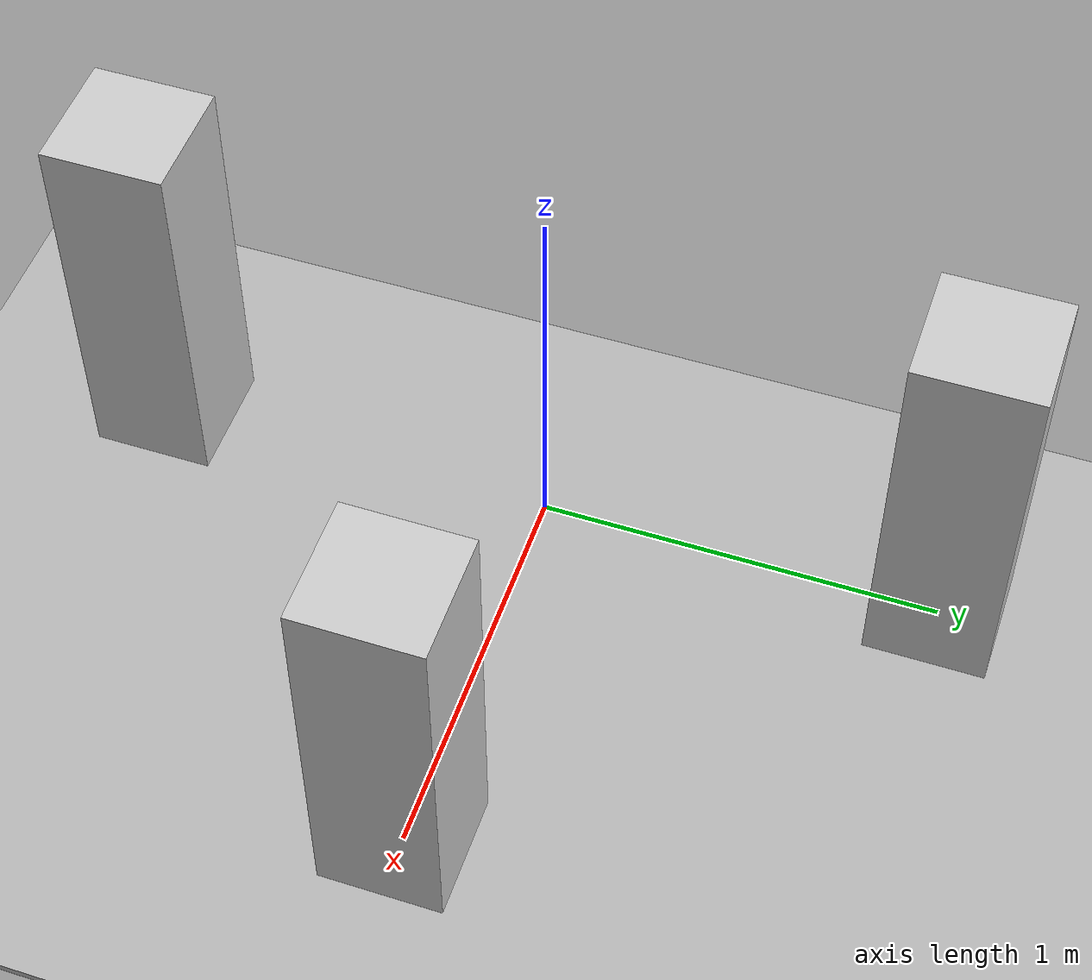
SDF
<?xml version="1.0" ?>
<sdf version="1.6">
  <world name="rwc2019">
    <light name="sun" type="directional">
      <direction>0.5 0.1 -0.9</direction>
      <pose>0 0 10 0 0 0</pose>
      <name>sun</name>
      <specular>0.2 0.2 0.2 1</specular>
      <cast_shadows>true</cast_shadows>
      <diffuse>0.8 0.8 0.8 1</diffuse>
      <attenuation>
        <range>1000</range>
        <quadratic>0.001</quadratic>
        <constant>0.9</constant>
        <linear>0.01</linear>
      </attenuation>
    </light>
    <include name="floor">
      <pose>0 0 0 0 0 0</pose>
      <name>floor</name>
      <uri>model://floor</uri>
    </include>
    <include name="objectA">
      <pose>1.0 0.0 0.0 0 0 0.0</pose>
      <name>objectA</name>
      -<uri>model://block</uri>
    </include>
        <include name="objectB">
      <pose>0 1.0 0.0 0 0 0.0</pose>
      <name>objectB</name>
      -<uri>model://block</uri>
    </include>
        <include name="objectC">
      <pose>0 -1.0 0.0 0 0 0.0</pose>
      <name>objectC</name>
      -<uri>model://block</uri>
    </include>
    <name>testmodel</name>
  </world>
</sdf>

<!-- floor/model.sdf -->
<sdf version="1.6">
  <model name="floor">
    <link name="1">
      <collision name="1">
        <geometry>
          <box>
            <size>200 200 0.02</size>
          </box>
        </geometry>
        <name>1</name>
      </collision>
      <visual name="1">
        <geometry>
          <box>
            <size>200 200 0.02</size>
          </box>
        </geometry>
        <name>1</name>
      </visual>
      <pose>0 0 -0.01 0 0 0</pose>
      <name>1</name>
    </link>
    <static>true</static>
    <name>floor</name>
  </model>
</sdf>

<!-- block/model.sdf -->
<sdf version="1.6">
  <model name="block">
    <link name="1">
      <collision name="1">
        <geometry>
          <box>
            <size>0.3 0.3 1</size>
          </box>
        </geometry>
        <name>1</name>
      </collision>
      <visual name="1">
        <geometry>
          <box>
            <size>0.3 0.3 1</size>
          </box>
        </geometry>
        <material>
          <ambient>0.8 0.8 0.8 1</ambient>
        </material>
        <name>1</name>
      </visual>
      <pose>0 0 0.5 0 0 0</pose>
      <name>1</name>
    </link>
    <static>true</static>
    <name>block</name>
  </model>
</sdf>
